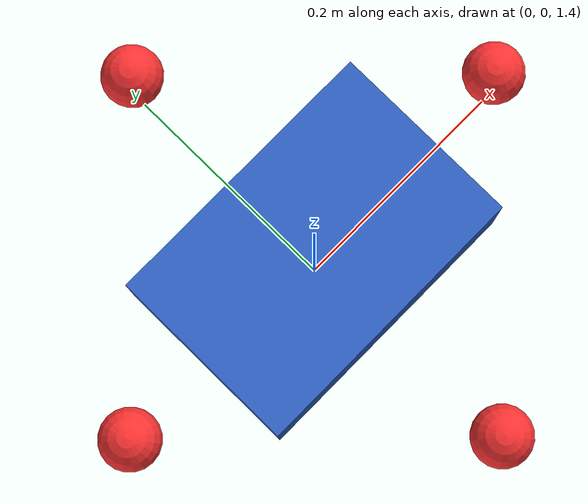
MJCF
<mujoco model="simple_quadrotor">
  <option timestep="0.002" gravity="0 0 -9.81"/>
  <statistic center="0 0 1" extent="2"/>

  <worldbody>
    <light pos="0 0 4" dir="0 0 -1"/>
    <geom name="ground" type="plane" size="3 3 0.1" rgba="0.7 0.7 0.7 1"/>

    <body name="quadrotor" pos="0 0 1.5">
      <freejoint name="root"/>
      <inertial pos="0 0 0" mass="1" diaginertia="0.01 0.01 0.02"/>
      <geom name="body_collision" type="box" size="0.12 0.08 0.04"
            rgba="0.2 0.4 0.8 1"/>

      <!-- Four thrust points, 0.2 m from the center. Local +Z points upward. -->
      <site name="rotor_front" pos="0.2 0 0" size="0.025" rgba="1 0.2 0.2 1"/>
      <site name="rotor_back" pos="-0.2 0 0" size="0.025" rgba="1 0.2 0.2 1"/>
      <site name="rotor_left" pos="0 0.2 0" size="0.025" rgba="1 0.2 0.2 1"/>
      <site name="rotor_right" pos="0 -0.2 0" size="0.025" rgba="1 0.2 0.2 1"/>
    </body>
  </worldbody>

  <actuator>
    <!-- Each control value is one rotor's upward force in newtons. -->
    <motor name="front_thrust" site="rotor_front" gear="0 0 1 0 0 0"
           ctrllimited="true" ctrlrange="0 5"/>
    <motor name="back_thrust" site="rotor_back" gear="0 0 1 0 0 0"
           ctrllimited="true" ctrlrange="0 5"/>
    <motor name="left_thrust" site="rotor_left" gear="0 0 1 0 0 0"
           ctrllimited="true" ctrlrange="0 5"/>
    <motor name="right_thrust" site="rotor_right" gear="0 0 1 0 0 0"
           ctrllimited="true" ctrlrange="0 5"/>
  </actuator>
</mujoco>
